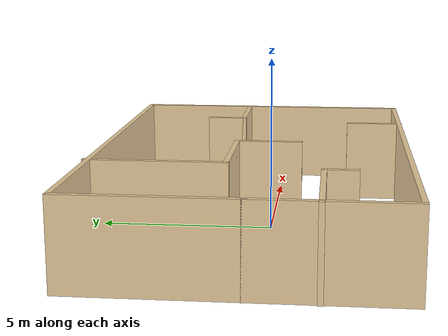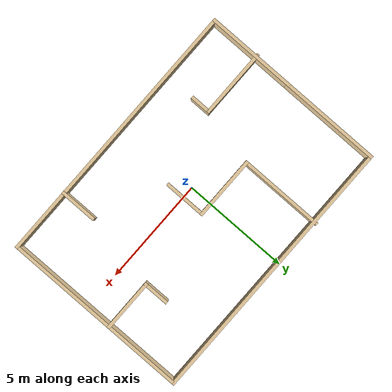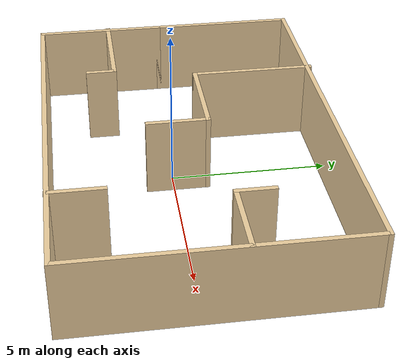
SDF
<?xml version='1.0'?>
<sdf version='1.7'>
  <model name='map1_level1'>
    <pose>0.360274 0.507327 0 0 -0 0</pose>
    <link name='Wall_1'>
      <collision name='Wall_1_Collision'>
        <geometry>
          <box>
            <size>4.25 0.15 2.5</size>
          </box>
        </geometry>
        <pose>0 0 1.25 0 -0 0</pose>
      </collision>
      <visual name='Wall_1_Visual'>
        <pose>0 0 1.25 0 -0 0</pose>
        <geometry>
          <box>
            <size>4.25 0.15 2.5</size>
          </box>
        </geometry>
        <material>
          <script>
            <uri>file://media/materials/scripts/gazebo.material</uri>
            <name>Gazebo/Grey</name>
          </script>
          <ambient>0.921569 0.807843 0.615686 1</ambient>
        </material>
        <meta>
          <layer>0</layer>
        </meta>
      </visual>
      <pose>-6.27173 -2.33605 0 0 -0 -1.5708</pose>
    </link>
    <link name='Wall_10'>
      <collision name='Wall_10_Collision'>
        <geometry>
          <box>
            <size>3 0.15 2.5</size>
          </box>
        </geometry>
        <pose>0 0 1.25 0 -0 0</pose>
      </collision>
      <visual name='Wall_10_Visual'>
        <pose>0 0 1.25 0 -0 0</pose>
        <geometry>
          <box>
            <size>3 0.15 2.5</size>
          </box>
        </geometry>
        <material>
          <script>
            <uri>file://media/materials/scripts/gazebo.material</uri>
            <name>Gazebo/Grey</name>
          </script>
          <ambient>0.921569 0.807843 0.615686 1</ambient>
        </material>
        <meta>
          <layer>0</layer>
        </meta>
      </visual>
      <pose>-1.22788 0.54651 0 0 -0 0</pose>
    </link>
    <link name='Wall_11'>
      <collision name='Wall_11_Collision'>
        <geometry>
          <box>
            <size>2 0.15 2.5</size>
          </box>
        </geometry>
        <pose>0 0 1.25 0 -0 0</pose>
      </collision>
      <visual name='Wall_11_Visual'>
        <pose>0 0 1.25 0 -0 0</pose>
        <geometry>
          <box>
            <size>2 0.15 2.5</size>
          </box>
        </geometry>
        <material>
          <script>
            <uri>file://media/materials/scripts/gazebo.material</uri>
            <name>Gazebo/Grey</name>
          </script>
          <ambient>0.921569 0.807843 0.615686 1</ambient>
        </material>
        <meta>
          <layer>0</layer>
        </meta>
      </visual>
      <pose>0.197115 -0.37849 0 0 -0 -1.5708</pose>
    </link>
    <link name='Wall_13'>
      <collision name='Wall_13_Collision'>
        <geometry>
          <box>
            <size>3.25 0.15 2.5</size>
          </box>
        </geometry>
        <pose>0 0 1.25 0 -0 0</pose>
      </collision>
      <visual name='Wall_13_Visual'>
        <pose>0 0 1.25 0 -0 0</pose>
        <geometry>
          <box>
            <size>3.25 0.15 2.5</size>
          </box>
        </geometry>
        <material>
          <script>
            <uri>file://media/materials/scripts/gazebo.material</uri>
            <name>Gazebo/Grey</name>
          </script>
          <ambient>0.921569 0.807843 0.615686 1</ambient>
        </material>
        <meta>
          <layer>0</layer>
        </meta>
      </visual>
      <pose>-4.77827 -2.07031 0 0 -0 0</pose>
    </link>
    <link name='Wall_14'>
      <collision name='Wall_14_Collision'>
        <geometry>
          <box>
            <size>1 0.15 2.5</size>
          </box>
        </geometry>
        <pose>0 0 1.25 0 -0 0</pose>
      </collision>
      <visual name='Wall_14_Visual'>
        <pose>0 0 1.25 0 -0 0</pose>
        <geometry>
          <box>
            <size>1 0.15 2.5</size>
          </box>
        </geometry>
        <material>
          <script>
            <uri>file://media/materials/scripts/gazebo.material</uri>
            <name>Gazebo/Grey</name>
          </script>
          <ambient>0.921569 0.807843 0.615686 1</ambient>
        </material>
        <meta>
          <layer>0</layer>
        </meta>
      </visual>
      <pose>-3.22827 -2.49531 0 0 -0 -1.5708</pose>
    </link>
    <link name='Wall_16'>
      <collision name='Wall_16_Collision'>
        <geometry>
          <box>
            <size>2.5 0.15 2.5</size>
          </box>
        </geometry>
        <pose>0 0 1.25 0 -0 0</pose>
      </collision>
      <visual name='Wall_16_Visual'>
        <pose>0 0 1.25 0 -0 0</pose>
        <geometry>
          <box>
            <size>2.5 0.15 2.5</size>
          </box>
        </geometry>
        <material>
          <script>
            <uri>file://media/materials/scripts/gazebo.material</uri>
            <name>Gazebo/Grey</name>
          </script>
          <ambient>0.921569 0.807843 0.615686 1</ambient>
        </material>
        <meta>
          <layer>0</layer>
        </meta>
      </visual>
      <pose>5.15123 0.721121 0 0 -0 3.14159</pose>
    </link>
    <link name='Wall_17'>
      <collision name='Wall_17_Collision'>
        <geometry>
          <box>
            <size>1.25 0.15 2.5</size>
          </box>
        </geometry>
        <pose>0 0 1.25 0 -0 0</pose>
      </collision>
      <visual name='Wall_17_Visual'>
        <pose>0 0 1.25 0 -0 0</pose>
        <geometry>
          <box>
            <size>1.25 0.15 2.5</size>
          </box>
        </geometry>
        <material>
          <script>
            <uri>file://media/materials/scripts/gazebo.material</uri>
            <name>Gazebo/Grey</name>
          </script>
          <ambient>0.921569 0.807843 0.615686 1</ambient>
        </material>
        <meta>
          <layer>0</layer>
        </meta>
      </visual>
      <pose>3.97623 1.27112 0 0 -0 1.5708</pose>
    </link>
    <link name='Wall_19'>
      <collision name='Wall_19_Collision'>
        <geometry>
          <box>
            <size>1.75 0.15 2.5</size>
          </box>
        </geometry>
        <pose>0 0 1.25 0 -0 0</pose>
      </collision>
      <visual name='Wall_19_Visual'>
        <pose>0 0 1.25 0 -0 0</pose>
        <geometry>
          <box>
            <size>1.75 0.15 2.5</size>
          </box>
        </geometry>
        <material>
          <script>
            <uri>file://media/materials/scripts/gazebo.material</uri>
            <name>Gazebo/Grey</name>
          </script>
          <ambient>0.921569 0.807843 0.615686 1</ambient>
        </material>
        <meta>
          <layer>0</layer>
        </meta>
      </visual>
      <pose>3.3487 -3.59651 0 0 -0 1.5708</pose>
    </link>
    <link name='Wall_2'>
      <collision name='Wall_2_Collision'>
        <geometry>
          <box>
            <size>12.75 0.15 2.5</size>
          </box>
        </geometry>
        <pose>0 0 1.25 0 -0 0</pose>
      </collision>
      <visual name='Wall_2_Visual'>
        <pose>0 0 1.25 0 -0 0</pose>
        <geometry>
          <box>
            <size>12.75 0.15 2.5</size>
          </box>
        </geometry>
        <material>
          <script>
            <uri>file://media/materials/scripts/gazebo.material</uri>
            <name>Gazebo/Grey</name>
          </script>
          <ambient>0.921569 0.807843 0.615686 1</ambient>
        </material>
        <meta>
          <layer>0</layer>
        </meta>
      </visual>
      <pose>0.028273 -4.38605 0 0 -0 0</pose>
    </link>
    <link name='Wall_3'>
      <collision name='Wall_3_Collision'>
        <geometry>
          <box>
            <size>8.75 0.15 2.5</size>
          </box>
        </geometry>
        <pose>0 0 1.25 0 -0 0</pose>
      </collision>
      <visual name='Wall_3_Visual'>
        <pose>0 0 1.25 0 -0 0</pose>
        <geometry>
          <box>
            <size>8.75 0.15 2.5</size>
          </box>
        </geometry>
        <material>
          <script>
            <uri>file://media/materials/scripts/gazebo.material</uri>
            <name>Gazebo/Grey</name>
          </script>
          <ambient>0.921569 0.807843 0.615686 1</ambient>
        </material>
        <meta>
          <layer>0</layer>
        </meta>
      </visual>
      <pose>6.32827 -0.086054 0 0 -0 1.5708</pose>
    </link>
    <link name='Wall_6'>
      <collision name='Wall_6_Collision'>
        <geometry>
          <box>
            <size>4.75 0.15 2.5</size>
          </box>
        </geometry>
        <pose>0 0 1.25 0 -0 0</pose>
      </collision>
      <visual name='Wall_6_Visual'>
        <pose>0 0 1.25 0 -0 0</pose>
        <geometry>
          <box>
            <size>4.75 0.15 2.5</size>
          </box>
        </geometry>
        <material>
          <script>
            <uri>file://media/materials/scripts/gazebo.material</uri>
            <name>Gazebo/Grey</name>
          </script>
          <ambient>0.921569 0.807843 0.615686 1</ambient>
        </material>
        <meta>
          <layer>0</layer>
        </meta>
      </visual>
      <pose>-6.27173 2.01395 0 0 -0 1.5708</pose>
    </link>
    <link name='Wall_7'>
      <collision name='Wall_7_Collision'>
        <geometry>
          <box>
            <size>12.75 0.15 2.5</size>
          </box>
        </geometry>
        <pose>0 0 1.25 0 -0 0</pose>
      </collision>
      <visual name='Wall_7_Visual'>
        <pose>0 0 1.25 0 -0 0</pose>
        <geometry>
          <box>
            <size>12.75 0.15 2.5</size>
          </box>
        </geometry>
        <material>
          <script>
            <uri>file://media/materials/scripts/gazebo.material</uri>
            <name>Gazebo/Grey</name>
          </script>
          <ambient>0.921569 0.807843 0.615686 1</ambient>
        </material>
        <meta>
          <layer>0</layer>
        </meta>
      </visual>
      <pose>0.028273 4.31395 0 0 -0 0</pose>
    </link>
    <link name='Wall_9'>
      <collision name='Wall_9_Collision'>
        <geometry>
          <box>
            <size>4 0.15 2.5</size>
          </box>
        </geometry>
        <pose>0 0 1.25 0 -0 0</pose>
      </collision>
      <visual name='Wall_9_Visual'>
        <pose>0 0 1.25 0 -0 0</pose>
        <geometry>
          <box>
            <size>4 0.15 2.5</size>
          </box>
        </geometry>
        <material>
          <script>
            <uri>file://media/materials/scripts/gazebo.material</uri>
            <name>Gazebo/Grey</name>
          </script>
          <ambient>0.921569 0.807843 0.615686 1</ambient>
        </material>
        <meta>
          <layer>0</layer>
        </meta>
      </visual>
      <pose>-2.65288 2.47151 0 0 -0 -1.5708</pose>
    </link>
    <static>1</static>
  </model>
</sdf>
